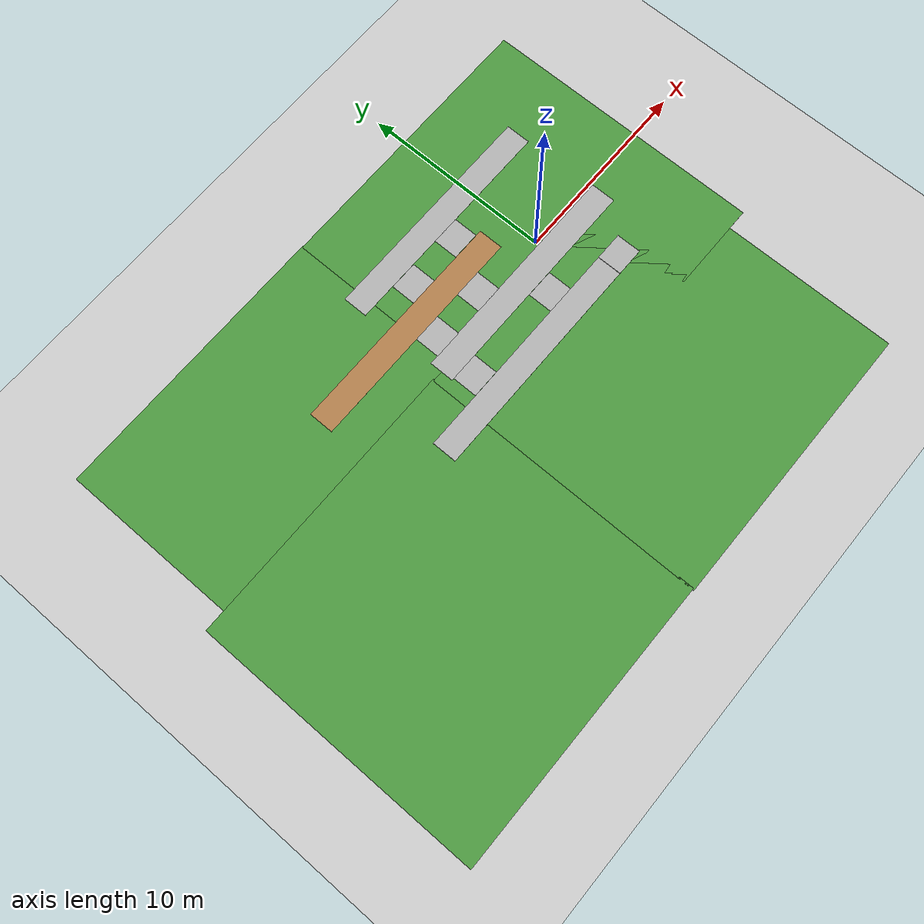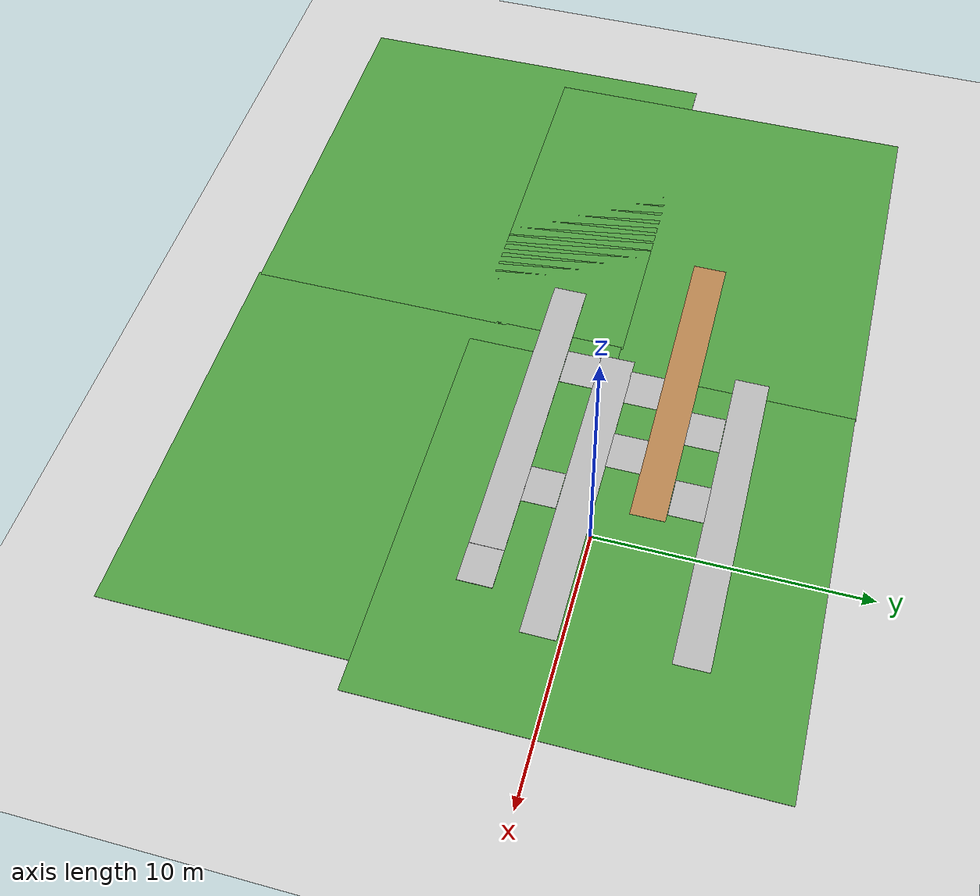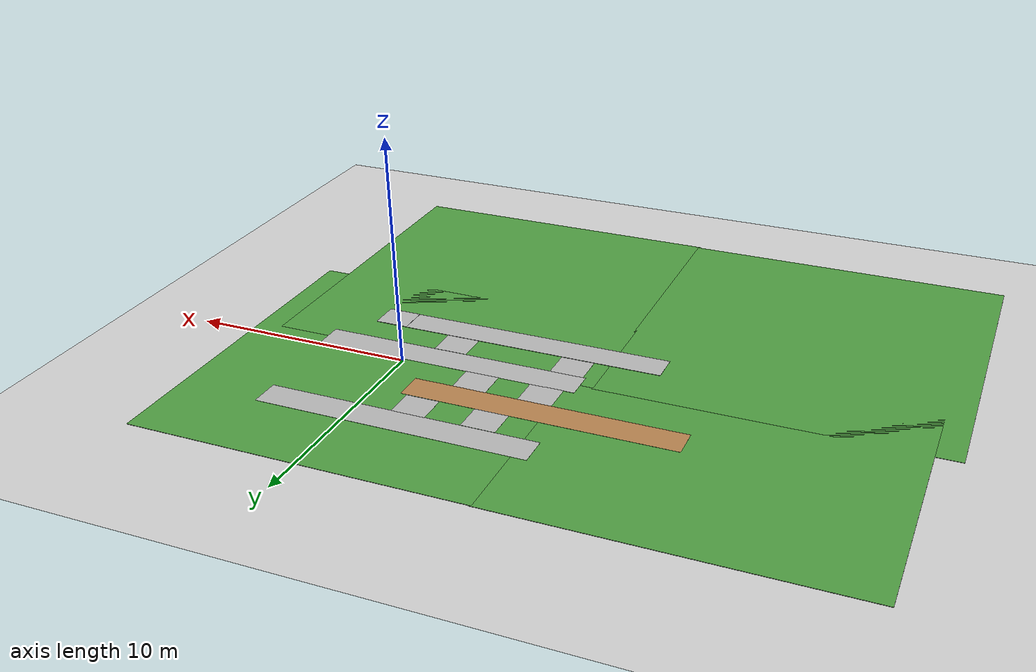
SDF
<sdf version="1.7">
 <world name="default">
  <light name="sun" type="directional">
   <pose>0 0 10 0 -0 0</pose>
   <diffuse>0.8 0.8 0.8 1</diffuse>
   <specular>0.2 0.2 0.2 1</specular>
   <attenuation>
    <range>1000</range>
    <constant>0.9</constant>
    <linear>0.01</linear>
    <quadratic>0.001</quadratic>
   </attenuation>
   <direction>-0.5 0.1 -0.9</direction>
   <spot><inner_angle>0</inner_angle><outer_angle>0</outer_angle><falloff>0</falloff></spot>
  </light>
  <model name="ground_plane">
   <static>1</static>
   <link name="link">
    <collision name="collision">
     <geometry><plane><normal>0 0 1</normal><size>100 100</size></plane></geometry>
     <surface>
      <contact><collide_bitmask>65535</collide_bitmask></contact>
      <friction><ode><mu>100</mu><mu2>50</mu2></ode></friction>
     </surface>
    </collision>
    <visual name="visual">
     <cast_shadows>0</cast_shadows>
     <geometry><plane><normal>0 0 1</normal><size>100 100</size></plane></geometry>
     <material>
      <script><uri>file://media/materials/scripts/gazebo.material</uri><name>Gazebo/Grey</name></script>
     </material>
    </visual>
   </link>
  </model>
  <gravity>0 0 -9.8</gravity>
  <magnetic_field>6e-06 2.3e-05 -4.2e-05</magnetic_field>
  <atmosphere type="adiabatic"/>
  <physics type="ode">
   <max_step_size>0.001</max_step_size>
   <real_time_factor>1</real_time_factor>
   <real_time_update_rate>1000</real_time_update_rate>
  </physics>
  <scene><ambient>0.4 0.4 0.4 1</ambient><background>0.7 0.7 0.7 1</background><shadows>1</shadows></scene>
  <spherical_coordinates>
   <surface_model>EARTH_WGS84</surface_model>
   <latitude_deg>0</latitude_deg>
   <longitude_deg>0</longitude_deg>
   <elevation>0</elevation>
   <heading_deg>0</heading_deg>
  </spherical_coordinates>
  <model name="grasspatch">
   <static>1</static>
   <link name="link">
    <collision name="collision">
     <geometry><plane><normal>0 0 1</normal><size>15 15</size></plane></geometry>
     <surface><friction><ode><mu>0.5</mu><mu2>0.5</mu2></ode></friction></surface>
    </collision>
    <visual name="visual_s10">
     <cast_shadows>0</cast_shadows>
     <geometry><plane><normal>0 0 1</normal><size>15 15</size></plane></geometry>
     <material>
      <script>
       <uri>model://grasspatch//materials/scripts/</uri>
       <uri>model://grasspatch//materials/textures/</uri>
       <name>vrc/grass</name>
      </script>
     </material>
    </visual>
   </link>
   <pose>0.161321 0.861179 0 0 -0 0</pose>
  </model>
  <model name="grasspatch_0">
   <static>1</static>
   <link name="link">
    <collision name="collision">
     <geometry><plane><normal>0 0 1</normal><size>15 15</size></plane></geometry>
     <surface><friction><ode><mu>0.5</mu><mu2>0.5</mu2></ode></friction></surface>
    </collision>
    <visual name="visual_s10">
     <cast_shadows>0</cast_shadows>
     <geometry><plane><normal>0 0 1</normal><size>15 15</size></plane></geometry>
     <material>
      <script>
       <uri>model://grasspatch//materials/scripts/</uri>
       <uri>model://grasspatch//materials/textures/</uri>
       <name>vrc/grass</name>
      </script>
     </material>
    </visual>
   </link>
   <pose>-14.7261 0.888719 0 0 -0 0</pose>
  </model>
  <model name="gravel_updated">
   <link name="link">
    <inertial>
     <mass>16.333</mass>
     <inertia><ixx>2.30078</ixx><ixy>0</ixy><ixz>0</ixz><iyy>197.708</iyy><iyz>0</iyz><izz>200.007</izz></inertia>
    </inertial>
    <visual name="visual">
     <geometry><box><size>12 1.3 0.02</size></box></geometry>
     <material>
      <script><name>Gazebo/Footway</name><uri>file://media/materials/scripts/gazebo.material</uri></script>
      <shader type="vertex"><normal_map>__default__</normal_map></shader>
      <ambient>0.3 0.3 0.3 1</ambient>
      <diffuse>0.7 0.7 0.7 1</diffuse>
      <specular>0.01 0.01 0.01 1</specular>
      <emissive>0 0 0 1</emissive>
     </material>
    </visual>
    <collision name="collision_1">
     <geometry><box><size>12 1.3 0.02</size></box></geometry>
     <surface>
      <friction>
       <ode><mu>0.3</mu><mu2>0.3</mu2><fdir1>0 0 0</fdir1><slip1>0</slip1><slip2>0</slip2></ode>
       <torsional>
        <coefficient>1</coefficient>
        <patch_radius>0</patch_radius>
        <surface_radius>0</surface_radius>
        <use_patch_radius>1</use_patch_radius>
        <ode><slip>0</slip></ode>
       </torsional>
      </friction>
      <bounce><restitution_coefficient>0</restitution_coefficient><threshold>1e+06</threshold></bounce>
      <contact>
       <collide_without_contact>0</collide_without_contact>
       <collide_without_contact_bitmask>1</collide_without_contact_bitmask>
       <collide_bitmask>1</collide_bitmask>
       <ode>
        <soft_cfm>0</soft_cfm>
        <soft_erp>0.2</soft_erp>
        <kp>2.3e+07</kp>
        <kd>14000</kd>
        <max_vel>0.01</max_vel>
        <min_depth>0</min_depth>
       </ode>
       <bullet>
        <split_impulse>1</split_impulse>
        <split_impulse_penetration_threshold>-0.01</split_impulse_penetration_threshold>
        <soft_cfm>0</soft_cfm>
        <soft_erp>0.2</soft_erp>
        <kp>2.3e+07</kp>
        <kd>14000</kd>
       </bullet>
      </contact>
     </surface>
    </collision>
   </link>
   <static>1</static>
   <pose>-4.66562 -3.42334 0.009999 0 0 -5e-06</pose>
  </model>
  <model name="rigid_surface">
   <link name="link">
    <inertial>
     <mass>1</mass>
     <inertia>
      <ixx>0.166667</ixx>
      <ixy>0</ixy>
      <ixz>0</ixz>
      <iyy>0.166667</iyy>
      <iyz>0</iyz>
      <izz>0.166667</izz>
     </inertia>
    </inertial>
    <visual name="visual">
     <geometry><box><size>1.5 1.3 0.02</size></box></geometry>
     <material>
      <script><name>Gazebo/CoM</name><uri>file://media/materials/scripts/gazebo.material</uri></script>
      <shader type="pixel"><normal_map>__default__</normal_map></shader>
      <ambient>0.3 0.3 0.3 1</ambient>
      <diffuse>0.7 0.7 0.7 1</diffuse>
      <specular>0.01 0.01 0.01 1</specular>
      <emissive>0 0 0 1</emissive>
     </material>
    </visual>
    <collision name="collision">
     <geometry><box><size>1.5 1.3 0.02</size></box></geometry>
     <surface>
      <friction>
       <ode><mu>1</mu><mu2>1</mu2><fdir1>0 0 0</fdir1><slip1>0</slip1><slip2>0</slip2></ode>
       <torsional>
        <coefficient>1</coefficient>
        <patch_radius>0</patch_radius>
        <surface_radius>0</surface_radius>
        <use_patch_radius>1</use_patch_radius>
        <ode><slip>0</slip></ode>
       </torsional>
      </friction>
      <bounce><restitution_coefficient>0</restitution_coefficient><threshold>1e+06</threshold></bounce>
      <contact>
       <collide_without_contact>0</collide_without_contact>
       <collide_without_contact_bitmask>1</collide_without_contact_bitmask>
       <collide_bitmask>1</collide_bitmask>
       <ode>
        <soft_cfm>0</soft_cfm>
        <soft_erp>0.2</soft_erp>
        <kp>1e+13</kp>
        <kd>1</kd>
        <max_vel>0.01</max_vel>
        <min_depth>0</min_depth>
       </ode>
       <bullet>
        <split_impulse>1</split_impulse>
        <split_impulse_penetration_threshold>-0.01</split_impulse_penetration_threshold>
        <soft_cfm>0</soft_cfm>
        <soft_erp>0.2</soft_erp>
        <kp>1e+13</kp>
        <kd>1</kd>
       </bullet>
      </contact>
     </surface>
    </collision>
   </link>
   <static>1</static>
   <pose>2.09076 -3.42533 0.016356 0 1e-05 0</pose>
  </model>
  <model name="rigid_surface_0">
   <link name="link">
    <inertial>
     <mass>1</mass>
     <inertia>
      <ixx>0.166667</ixx>
      <ixy>0</ixy>
      <ixz>0</ixz>
      <iyy>0.166667</iyy>
      <iyz>0</iyz>
      <izz>0.166667</izz>
     </inertia>
    </inertial>
    <visual name="visual">
     <geometry><box><size>1.5 1.3 0.02</size></box></geometry>
     <material>
      <script><name>Gazebo/CoM</name><uri>file://media/materials/scripts/gazebo.material</uri></script>
      <shader type="pixel"><normal_map>__default__</normal_map></shader>
      <ambient>0.3 0.3 0.3 1</ambient>
      <diffuse>0.7 0.7 0.7 1</diffuse>
      <specular>0.01 0.01 0.01 1</specular>
      <emissive>0 0 0 1</emissive>
     </material>
    </visual>
    <collision name="collision">
     <geometry><box><size>1.5 1.3 0.02</size></box></geometry>
     <surface>
      <friction>
       <ode><mu>1</mu><mu2>1</mu2><fdir1>0 0 0</fdir1><slip1>0</slip1><slip2>0</slip2></ode>
       <torsional>
        <coefficient>1</coefficient>
        <patch_radius>0</patch_radius>
        <surface_radius>0</surface_radius>
        <use_patch_radius>1</use_patch_radius>
        <ode><slip>0</slip></ode>
       </torsional>
      </friction>
      <bounce><restitution_coefficient>0</restitution_coefficient><threshold>1e+06</threshold></bounce>
      <contact>
       <collide_without_contact>0</collide_without_contact>
       <collide_without_contact_bitmask>1</collide_without_contact_bitmask>
       <collide_bitmask>1</collide_bitmask>
       <ode>
        <soft_cfm>0</soft_cfm>
        <soft_erp>0.2</soft_erp>
        <kp>1e+13</kp>
        <kd>1</kd>
        <max_vel>0.01</max_vel>
        <min_depth>0</min_depth>
       </ode>
       <bullet>
        <split_impulse>1</split_impulse>
        <split_impulse_penetration_threshold>-0.01</split_impulse_penetration_threshold>
        <soft_cfm>0</soft_cfm>
        <soft_erp>0.2</soft_erp>
        <kp>1e+13</kp>
        <kd>1</kd>
       </bullet>
      </contact>
     </surface>
    </collision>
   </link>
   <static>1</static>
   <pose>-6.95943 -2.11349 0 0 -0 0</pose>
  </model>
  <model name="rigid_surface_1">
   <link name="link">
    <inertial>
     <mass>1</mass>
     <inertia>
      <ixx>0.166667</ixx>
      <ixy>0</ixy>
      <ixz>0</ixz>
      <iyy>0.166667</iyy>
      <iyz>0</iyz>
      <izz>0.166667</izz>
     </inertia>
    </inertial>
    <visual name="visual">
     <geometry><box><size>1.5 1.3 0.02</size></box></geometry>
     <material>
      <script><name>Gazebo/CoM</name><uri>file://media/materials/scripts/gazebo.material</uri></script>
      <shader type="pixel"><normal_map>__default__</normal_map></shader>
      <ambient>0.3 0.3 0.3 1</ambient>
      <diffuse>0.7 0.7 0.7 1</diffuse>
      <specular>0.01 0.01 0.01 1</specular>
      <emissive>0 0 0 1</emissive>
     </material>
    </visual>
    <collision name="collision">
     <geometry><box><size>1.5 1.3 0.02</size></box></geometry>
     <surface>
      <friction>
       <ode><mu>1</mu><mu2>1</mu2><fdir1>0 0 0</fdir1><slip1>0</slip1><slip2>0</slip2></ode>
       <torsional>
        <coefficient>1</coefficient>
        <patch_radius>0</patch_radius>
        <surface_radius>0</surface_radius>
        <use_patch_radius>1</use_patch_radius>
        <ode><slip>0</slip></ode>
       </torsional>
      </friction>
      <bounce><restitution_coefficient>0</restitution_coefficient><threshold>1e+06</threshold></bounce>
      <contact>
       <collide_without_contact>0</collide_without_contact>
       <collide_without_contact_bitmask>1</collide_without_contact_bitmask>
       <collide_bitmask>1</collide_bitmask>
       <ode>
        <soft_cfm>0</soft_cfm>
        <soft_erp>0.2</soft_erp>
        <kp>1e+13</kp>
        <kd>1</kd>
        <max_vel>0.01</max_vel>
        <min_depth>0</min_depth>
       </ode>
       <bullet>
        <split_impulse>1</split_impulse>
        <split_impulse_penetration_threshold>-0.01</split_impulse_penetration_threshold>
        <soft_cfm>0</soft_cfm>
        <soft_erp>0.2</soft_erp>
        <kp>1e+13</kp>
        <kd>1</kd>
       </bullet>
      </contact>
     </surface>
    </collision>
   </link>
   <static>1</static>
   <pose>-1.51533 -2.12704 0 0 -0 0</pose>
  </model>
  <model name="sand_updated_path">
   <link name="link">
    <inertial>
     <mass>1</mass>
     <inertia>
      <ixx>0.166667</ixx>
      <ixy>0</ixy>
      <ixz>0</ixz>
      <iyy>0.166667</iyy>
      <iyz>0</iyz>
      <izz>0.166667</izz>
     </inertia>
    </inertial>
    <pose>-0.031374 0.150959 0 0 -0 0</pose>
    <visual name="visual">
     <geometry><box><size>12 1.3 0.02</size></box></geometry>
     <material>
      <script>
       <uri>model://sand_updated/materials/scripts/</uri>
       <uri>model://sand_updated/materials/textures/</uri>
       <name>sand_texture</name>
      </script>
      <shader type="vertex"><normal_map>__default__</normal_map></shader>
      <ambient>0.3 0.3 0.3 1</ambient>
      <diffuse>0.7 0.7 0.7 1</diffuse>
      <specular>0.01 0.01 0.01 1</specular>
      <emissive>0 0 0 1</emissive>
     </material>
    </visual>
    <collision name="collision_1">
     <geometry><box><size>12 1.3 0.02</size></box></geometry>
     <surface>
      <friction>
       <ode><mu>0.3</mu><mu2>0.3</mu2><fdir1>0 0 0</fdir1><slip1>0</slip1><slip2>0</slip2></ode>
       <torsional>
        <coefficient>1</coefficient>
        <patch_radius>0</patch_radius>
        <surface_radius>0</surface_radius>
        <use_patch_radius>1</use_patch_radius>
        <ode><slip>0</slip></ode>
       </torsional>
      </friction>
      <bounce><restitution_coefficient>0</restitution_coefficient><threshold>1e+06</threshold></bounce>
      <contact>
       <collide_without_contact>0</collide_without_contact>
       <collide_without_contact_bitmask>1</collide_without_contact_bitmask>
       <collide_bitmask>1</collide_bitmask>
       <ode>
        <soft_cfm>0</soft_cfm>
        <soft_erp>0.2</soft_erp>
        <kp>9.1e+06</kp>
        <kd>9000</kd>
        <max_vel>0.01</max_vel>
        <min_depth>0</min_depth>
       </ode>
       <bullet>
        <split_impulse>1</split_impulse>
        <split_impulse_penetration_threshold>-0.01</split_impulse_penetration_threshold>
        <soft_cfm>0</soft_cfm>
        <soft_erp>0.2</soft_erp>
        <kp>9.1e+06</kp>
        <kd>9000</kd>
       </bullet>
      </contact>
     </surface>
    </collision>
   </link>
   <static>1</static>
   <pose>-1.79786 -0.967041 0 0 -0 0</pose>
  </model>
  <model name="Wood_path">
   <link name="link">
    <inertial>
     <mass>1</mass>
     <inertia>
      <ixx>0.166667</ixx>
      <ixy>0</ixy>
      <ixz>0</ixz>
      <iyy>0.166667</iyy>
      <iyz>0</iyz>
      <izz>0.166667</izz>
     </inertia>
    </inertial>
    <pose>-0.031374 0.150959 0 0 -0 0</pose>
    <visual name="visual">
     <geometry><box><size>12 1.3 0.02</size></box></geometry>
     <material>
      <script>
       <uri>model://sand_updated/materials/scripts/</uri>
       <uri>model://sand_updated/materials/textures/</uri>
       <name>Gazebo/WoodFloor</name>
      </script>
      <shader type="vertex"><normal_map>__default__</normal_map></shader>
      <ambient>0.3 0.3 0.3 1</ambient>
      <diffuse>0.7 0.7 0.7 1</diffuse>
      <specular>0.01 0.01 0.01 1</specular>
      <emissive>0 0 0 1</emissive>
     </material>
    </visual>
    <collision name="collision_1">
     <geometry><box><size>12 1.3 0.02</size></box></geometry>
     <surface>
      <friction>
       <ode><mu>0.3</mu><mu2>0.3</mu2><fdir1>0 0 0</fdir1><slip1>0</slip1><slip2>0</slip2></ode>
       <torsional>
        <coefficient>1</coefficient>
        <patch_radius>0</patch_radius>
        <surface_radius>0</surface_radius>
        <use_patch_radius>1</use_patch_radius>
        <ode><slip>0</slip></ode>
       </torsional>
      </friction>
      <bounce><restitution_coefficient>0</restitution_coefficient><threshold>1e+06</threshold></bounce>
      <contact>
       <collide_without_contact>0</collide_without_contact>
       <collide_without_contact_bitmask>1</collide_without_contact_bitmask>
       <collide_bitmask>1</collide_bitmask>
       <ode>
        <soft_cfm>0</soft_cfm>
        <soft_erp>0.2</soft_erp>
        <kp>1.5e+09</kp>
        <kd>120000</kd>
        <max_vel>0.01</max_vel>
        <min_depth>0</min_depth>
       </ode>
       <bullet>
        <split_impulse>1</split_impulse>
        <split_impulse_penetration_threshold>-0.01</split_impulse_penetration_threshold>
        <soft_cfm>0</soft_cfm>
        <soft_erp>0.2</soft_erp>
        <kp>1.5e+09</kp>
        <kd>120000</kd>
       </bullet>
      </contact>
     </surface>
    </collision>
   </link>
   <static>1</static>
   <pose>-7.19033 1.61186 0 0 -0 0</pose>
  </model>
  <model name="concrete_path">
   <link name="link">
    <inertial>
     <mass>1</mass>
     <inertia>
      <ixx>0.166667</ixx>
      <ixy>0</ixy>
      <ixz>0</ixz>
      <iyy>0.166667</iyy>
      <iyz>0</iyz>
      <izz>0.166667</izz>
     </inertia>
    </inertial>
    <pose>-0.031374 0.150959 0 0 -0 0</pose>
    <visual name="visual">
     <geometry><box><size>12 1.3 0.02</size></box></geometry>
     <material>
      <script>
       <uri>model://sand_updated/materials/scripts/</uri>
       <uri>model://sand_updated/materials/textures/</uri>
       <name>Gazebo/Motorway</name>
      </script>
      <shader type="vertex"><normal_map>__default__</normal_map></shader>
      <ambient>0.3 0.3 0.3 1</ambient>
      <diffuse>0.7 0.7 0.7 1</diffuse>
      <specular>0.01 0.01 0.01 1</specular>
      <emissive>0 0 0 1</emissive>
     </material>
    </visual>
    <collision name="collision_1">
     <geometry><box><size>12 1.3 0.02</size></box></geometry>
     <surface>
      <friction>
       <ode><mu>0.3</mu><mu2>0.3</mu2><fdir1>0 0 0</fdir1><slip1>0</slip1><slip2>0</slip2></ode>
       <torsional>
        <coefficient>1</coefficient>
        <patch_radius>0</patch_radius>
        <surface_radius>0</surface_radius>
        <use_patch_radius>1</use_patch_radius>
        <ode><slip>0</slip></ode>
       </torsional>
      </friction>
      <bounce><restitution_coefficient>0</restitution_coefficient><threshold>1e+06</threshold></bounce>
      <contact>
       <collide_without_contact>0</collide_without_contact>
       <collide_without_contact_bitmask>1</collide_without_contact_bitmask>
       <collide_bitmask>1</collide_bitmask>
       <ode>
        <soft_cfm>0</soft_cfm>
        <soft_erp>0.2</soft_erp>
        <kp>3.4e+09</kp>
        <kd>180000</kd>
        <max_vel>0.01</max_vel>
        <min_depth>0</min_depth>
       </ode>
       <bullet>
        <split_impulse>1</split_impulse>
        <split_impulse_penetration_threshold>-0.01</split_impulse_penetration_threshold>
        <soft_cfm>0</soft_cfm>
        <soft_erp>0.2</soft_erp>
        <kp>3.4e+09</kp>
        <kd>180000</kd>
       </bullet>
      </contact>
     </surface>
    </collision>
   </link>
   <static>1</static>
   <pose>-1.9765 4.22093 0 0 -0 0</pose>
  </model>
  <model name="rigid_surface_2">
   <link name="link">
    <inertial>
     <mass>1</mass>
     <inertia>
      <ixx>0.166667</ixx>
      <ixy>0</ixy>
      <ixz>0</ixz>
      <iyy>0.166667</iyy>
      <iyz>0</iyz>
      <izz>0.166667</izz>
     </inertia>
    </inertial>
    <visual name="visual">
     <geometry><box><size>1.5 1.3 0.02</size></box></geometry>
     <material>
      <script><name>Gazebo/CoM</name><uri>file://media/materials/scripts/gazebo.material</uri></script>
      <shader type="pixel"><normal_map>__default__</normal_map></shader>
      <ambient>0.3 0.3 0.3 1</ambient>
      <diffuse>0.7 0.7 0.7 1</diffuse>
      <specular>0.01 0.01 0.01 1</specular>
      <emissive>0 0 0 1</emissive>
     </material>
    </visual>
    <collision name="collision">
     <geometry><box><size>1.5 1.3 0.02</size></box></geometry>
     <surface>
      <friction>
       <ode><mu>1</mu><mu2>1</mu2><fdir1>0 0 0</fdir1><slip1>0</slip1><slip2>0</slip2></ode>
       <torsional>
        <coefficient>1</coefficient>
        <patch_radius>0</patch_radius>
        <surface_radius>0</surface_radius>
        <use_patch_radius>1</use_patch_radius>
        <ode><slip>0</slip></ode>
       </torsional>
      </friction>
      <bounce><restitution_coefficient>0</restitution_coefficient><threshold>1e+06</threshold></bounce>
      <contact>
       <collide_without_contact>0</collide_without_contact>
       <collide_without_contact_bitmask>1</collide_without_contact_bitmask>
       <collide_bitmask>1</collide_bitmask>
       <ode>
        <soft_cfm>0</soft_cfm>
        <soft_erp>0.2</soft_erp>
        <kp>1e+13</kp>
        <kd>1</kd>
        <max_vel>0.01</max_vel>
        <min_depth>0</min_depth>
       </ode>
       <bullet>
        <split_impulse>1</split_impulse>
        <split_impulse_penetration_threshold>-0.01</split_impulse_penetration_threshold>
        <soft_cfm>0</soft_cfm>
        <soft_erp>0.2</soft_erp>
        <kp>1e+13</kp>
        <kd>1</kd>
       </bullet>
      </contact>
     </surface>
    </collision>
   </link>
   <static>1</static>
   <pose>-3.68471 0.469303 0 0 -0 0</pose>
  </model>
  <model name="rigid_surface_3">
   <link name="link">
    <inertial>
     <mass>1</mass>
     <inertia>
      <ixx>0.166667</ixx>
      <ixy>0</ixy>
      <ixz>0</ixz>
      <iyy>0.166667</iyy>
      <iyz>0</iyz>
      <izz>0.166667</izz>
     </inertia>
    </inertial>
    <visual name="visual">
     <geometry><box><size>1.5 1.3 0.02</size></box></geometry>
     <material>
      <script><name>Gazebo/CoM</name><uri>file://media/materials/scripts/gazebo.material</uri></script>
      <shader type="pixel"><normal_map>__default__</normal_map></shader>
      <ambient>0.3 0.3 0.3 1</ambient>
      <diffuse>0.7 0.7 0.7 1</diffuse>
      <specular>0.01 0.01 0.01 1</specular>
      <emissive>0 0 0 1</emissive>
     </material>
    </visual>
    <collision name="collision">
     <geometry><box><size>1.5 1.3 0.02</size></box></geometry>
     <surface>
      <friction>
       <ode><mu>1</mu><mu2>1</mu2><fdir1>0 0 0</fdir1><slip1>0</slip1><slip2>0</slip2></ode>
       <torsional>
        <coefficient>1</coefficient>
        <patch_radius>0</patch_radius>
        <surface_radius>0</surface_radius>
        <use_patch_radius>1</use_patch_radius>
        <ode><slip>0</slip></ode>
       </torsional>
      </friction>
      <bounce><restitution_coefficient>0</restitution_coefficient><threshold>1e+06</threshold></bounce>
      <contact>
       <collide_without_contact>0</collide_without_contact>
       <collide_without_contact_bitmask>1</collide_without_contact_bitmask>
       <collide_bitmask>1</collide_bitmask>
       <ode>
        <soft_cfm>0</soft_cfm>
        <soft_erp>0.2</soft_erp>
        <kp>1e+13</kp>
        <kd>1</kd>
        <max_vel>0.01</max_vel>
        <min_depth>0</min_depth>
       </ode>
       <bullet>
        <split_impulse>1</split_impulse>
        <split_impulse_penetration_threshold>-0.01</split_impulse_penetration_threshold>
        <soft_cfm>0</soft_cfm>
        <soft_erp>0.2</soft_erp>
        <kp>1e+13</kp>
        <kd>1</kd>
       </bullet>
      </contact>
     </surface>
    </collision>
   </link>
   <static>1</static>
   <pose>-6.61521 0.463482 0 0 -0 0</pose>
  </model>
  <model name="rigid_surface_4">
   <link name="link">
    <inertial>
     <mass>1</mass>
     <inertia>
      <ixx>0.166667</ixx>
      <ixy>0</ixy>
      <ixz>0</ixz>
      <iyy>0.166667</iyy>
      <iyz>0</iyz>
      <izz>0.166667</izz>
     </inertia>
    </inertial>
    <visual name="visual">
     <geometry><box><size>1.5 1.3 0.02</size></box></geometry>
     <material>
      <script><name>Gazebo/CoM</name><uri>file://media/materials/scripts/gazebo.material</uri></script>
      <shader type="pixel"><normal_map>__default__</normal_map></shader>
      <ambient>0.3 0.3 0.3 1</ambient>
      <diffuse>0.7 0.7 0.7 1</diffuse>
      <specular>0.01 0.01 0.01 1</specular>
      <emissive>0 0 0 1</emissive>
     </material>
    </visual>
    <collision name="collision">
     <geometry><box><size>1.5 1.3 0.02</size></box></geometry>
     <surface>
      <friction>
       <ode><mu>1</mu><mu2>1</mu2><fdir1>0 0 0</fdir1><slip1>0</slip1><slip2>0</slip2></ode>
       <torsional>
        <coefficient>1</coefficient>
        <patch_radius>0</patch_radius>
        <surface_radius>0</surface_radius>
        <use_patch_radius>1</use_patch_radius>
        <ode><slip>0</slip></ode>
       </torsional>
      </friction>
      <bounce><restitution_coefficient>0</restitution_coefficient><threshold>1e+06</threshold></bounce>
      <contact>
       <collide_without_contact>0</collide_without_contact>
       <collide_without_contact_bitmask>1</collide_without_contact_bitmask>
       <collide_bitmask>1</collide_bitmask>
       <ode>
        <soft_cfm>0</soft_cfm>
        <soft_erp>0.2</soft_erp>
        <kp>1e+13</kp>
        <kd>1</kd>
        <max_vel>0.01</max_vel>
        <min_depth>0</min_depth>
       </ode>
       <bullet>
        <split_impulse>1</split_impulse>
        <split_impulse_penetration_threshold>-0.01</split_impulse_penetration_threshold>
        <soft_cfm>0</soft_cfm>
        <soft_erp>0.2</soft_erp>
        <kp>1e+13</kp>
        <kd>1</kd>
       </bullet>
      </contact>
     </surface>
    </collision>
   </link>
   <static>1</static>
   <pose>-5.33596 3.05973 0 0 -0 0</pose>
  </model>
  <model name="rigid_surface_5">
   <link name="link">
    <inertial>
     <mass>1</mass>
     <inertia>
      <ixx>0.166667</ixx>
      <ixy>0</ixy>
      <ixz>0</ixz>
      <iyy>0.166667</iyy>
      <iyz>0</iyz>
      <izz>0.166667</izz>
     </inertia>
    </inertial>
    <visual name="visual">
     <geometry><box><size>1.5 1.3 0.02</size></box></geometry>
     <material>
      <script><name>Gazebo/CoM</name><uri>file://media/materials/scripts/gazebo.material</uri></script>
      <shader type="pixel"><normal_map>__default__</normal_map></shader>
      <ambient>0.3 0.3 0.3 1</ambient>
      <diffuse>0.7 0.7 0.7 1</diffuse>
      <specular>0.01 0.01 0.01 1</specular>
      <emissive>0 0 0 1</emissive>
     </material>
    </visual>
    <collision name="collision">
     <geometry><box><size>1.5 1.3 0.02</size></box></geometry>
     <surface>
      <friction>
       <ode><mu>1</mu><mu2>1</mu2><fdir1>0 0 0</fdir1><slip1>0</slip1><slip2>0</slip2></ode>
       <torsional>
        <coefficient>1</coefficient>
        <patch_radius>0</patch_radius>
        <surface_radius>0</surface_radius>
        <use_patch_radius>1</use_patch_radius>
        <ode><slip>0</slip></ode>
       </torsional>
      </friction>
      <bounce><restitution_coefficient>0</restitution_coefficient><threshold>1e+06</threshold></bounce>
      <contact>
       <collide_without_contact>0</collide_without_contact>
       <collide_without_contact_bitmask>1</collide_without_contact_bitmask>
       <collide_bitmask>1</collide_bitmask>
       <ode>
        <soft_cfm>0</soft_cfm>
        <soft_erp>0.2</soft_erp>
        <kp>1e+13</kp>
        <kd>1</kd>
        <max_vel>0.01</max_vel>
        <min_depth>0</min_depth>
       </ode>
       <bullet>
        <split_impulse>1</split_impulse>
        <split_impulse_penetration_threshold>-0.01</split_impulse_penetration_threshold>
        <soft_cfm>0</soft_cfm>
        <soft_erp>0.2</soft_erp>
        <kp>1e+13</kp>
        <kd>1</kd>
       </bullet>
      </contact>
     </surface>
    </collision>
   </link>
   <static>1</static>
   <pose>-2.26883 3.08034 0 0 -0 0</pose>
  </model>
  <model name="grasspatch_1">
   <static>1</static>
   <link name="link">
    <collision name="collision">
     <geometry><plane><normal>0 0 1</normal><size>15 15</size></plane></geometry>
     <surface><friction><ode><mu>0.5</mu><mu2>0.5</mu2></ode></friction></surface>
    </collision>
    <visual name="visual_s10">
     <cast_shadows>0</cast_shadows>
     <geometry><plane><normal>0 0 1</normal><size>15 15</size></plane></geometry>
     <material>
      <script>
       <uri>model://grasspatch//materials/scripts/</uri>
       <uri>model://grasspatch//materials/textures/</uri>
       <name>vrc/grass</name>
      </script>
     </material>
    </visual>
   </link>
   <pose>-0.906611 -8.32499 0 0 -0 0</pose>
  </model>
  <light name="user_directional_light_0" type="directional">
   <pose>-21.4168 14.9964 1 0 -0 0</pose>
   <diffuse>0.5 0.5 0.5 1</diffuse>
   <specular>0.1 0.1 0.1 1</specular>
   <direction>0.1 0.1 -0.9</direction>
   <attenuation>
    <range>20</range>
    <constant>0.5</constant>
    <linear>0.01</linear>
    <quadratic>0.001</quadratic>
   </attenuation>
   <spot><inner_angle>0</inner_angle><outer_angle>0</outer_angle><falloff>0</falloff></spot>
  </light>
  <light name="user_directional_light_1" type="directional">
   <pose>-17.0883 -12.309 1 0 -0 0</pose>
   <diffuse>0.5 0.5 0.5 1</diffuse>
   <specular>0.1 0.1 0.1 1</specular>
   <direction>0.1 0.1 -0.9</direction>
   <attenuation>
    <range>20</range>
    <constant>0.5</constant>
    <linear>0.01</linear>
    <quadratic>0.001</quadratic>
   </attenuation>
   <spot><inner_angle>0</inner_angle><outer_angle>0</outer_angle><falloff>0</falloff></spot>
  </light>
  <light name="user_directional_light_2" type="directional">
   <pose>8.37261 33.137 1 0 -0 0</pose>
   <diffuse>0.5 0.5 0.5 1</diffuse>
   <specular>0.1 0.1 0.1 1</specular>
   <direction>0.1 0.1 -0.9</direction>
   <attenuation>
    <range>20</range>
    <constant>0.5</constant>
    <linear>0.01</linear>
    <quadratic>0.001</quadratic>
   </attenuation>
   <spot><inner_angle>0</inner_angle><outer_angle>0</outer_angle><falloff>0</falloff></spot>
  </light>
  <light name="user_directional_light_3" type="directional">
   <pose>12.1465 -16.9955 1 0 -0 0</pose>
   <diffuse>0.5 0.5 0.5 1</diffuse>
   <specular>0.1 0.1 0.1 1</specular>
   <direction>0.1 0.1 -0.9</direction>
   <attenuation>
    <range>20</range>
    <constant>0.5</constant>
    <linear>0.01</linear>
    <quadratic>0.001</quadratic>
   </attenuation>
   <spot><inner_angle>0</inner_angle><outer_angle>0</outer_angle><falloff>0</falloff></spot>
  </light>
  <light name="user_directional_light_4" type="directional">
   <pose>-9.80992 -21.6223 1 0 -0 0</pose>
   <diffuse>0.5 0.5 0.5 1</diffuse>
   <specular>0.1 0.1 0.1 1</specular>
   <direction>0.1 0.1 -0.9</direction>
   <attenuation>
    <range>20</range>
    <constant>0.5</constant>
    <linear>0.01</linear>
    <quadratic>0.001</quadratic>
   </attenuation>
   <spot><inner_angle>0</inner_angle><outer_angle>0</outer_angle><falloff>0</falloff></spot>
  </light>
  <light name="user_directional_light_5" type="directional">
   <pose>-15.6307 36.2394 1 0 -0 0</pose>
   <diffuse>0.5 0.5 0.5 1</diffuse>
   <specular>0.1 0.1 0.1 1</specular>
   <direction>0.1 0.1 -0.9</direction>
   <attenuation>
    <range>20</range>
    <constant>0.5</constant>
    <linear>0.01</linear>
    <quadratic>0.001</quadratic>
   </attenuation>
   <spot><inner_angle>0</inner_angle><outer_angle>0</outer_angle><falloff>0</falloff></spot>
  </light>
  <light name="user_directional_light_6" type="directional">
   <pose>-13.4421 -17.0694 1 0 -0 0</pose>
   <diffuse>0.5 0.5 0.5 1</diffuse>
   <specular>0.1 0.1 0.1 1</specular>
   <direction>0.1 0.1 -0.9</direction>
   <attenuation>
    <range>20</range>
    <constant>0.5</constant>
    <linear>0.01</linear>
    <quadratic>0.001</quadratic>
   </attenuation>
   <spot><inner_angle>0</inner_angle><outer_angle>0</outer_angle><falloff>0</falloff></spot>
  </light>
  <model name="grasspatch_2">
   <static>1</static>
   <link name="link">
    <collision name="collision">
     <geometry><plane><normal>0 0 1</normal><size>15 15</size></plane></geometry>
     <surface><friction><ode><mu>0.5</mu><mu2>0.5</mu2></ode></friction></surface>
    </collision>
    <visual name="visual_s10">
     <cast_shadows>0</cast_shadows>
     <geometry><plane><normal>0 0 1</normal><size>15 15</size></plane></geometry>
     <material>
      <script>
       <uri>model://grasspatch//materials/scripts/</uri>
       <uri>model://grasspatch//materials/textures/</uri>
       <name>vrc/grass</name>
      </script>
     </material>
    </visual>
   </link>
   <pose>-15.8327 -8.2567 0 0 -0 0</pose>
  </model>
 </world>
</sdf>
